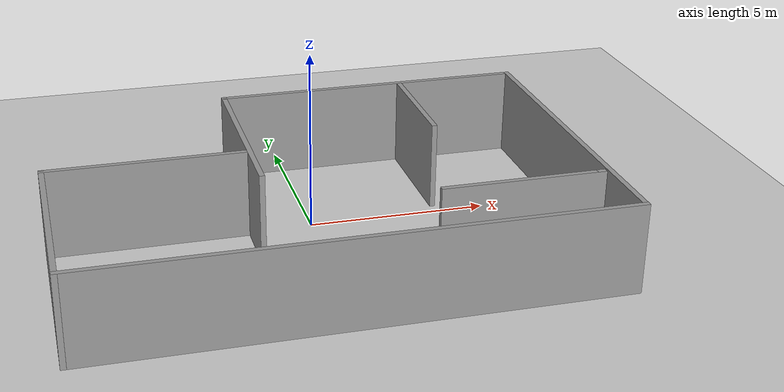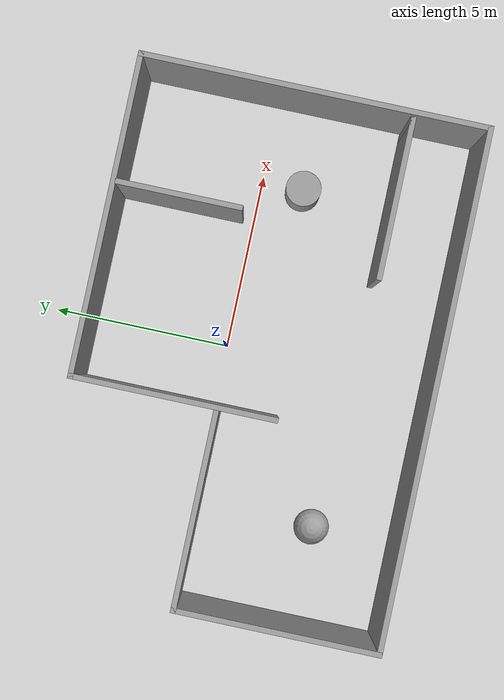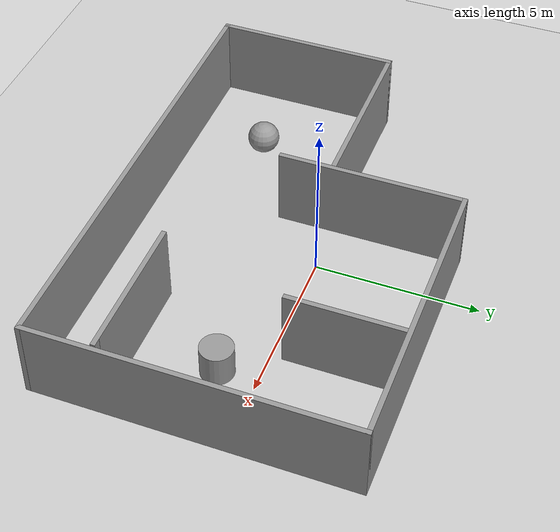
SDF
<sdf version="1.7">
 <world name="default">
  <light name="sun" type="directional">
   <pose>0 0 10 0 -0 0</pose>
   <diffuse>0.8 0.8 0.8 1</diffuse>
   <specular>0.2 0.2 0.2 1</specular>
   <attenuation>
    <range>1000</range>
    <constant>0.9</constant>
    <linear>0.01</linear>
    <quadratic>0.001</quadratic>
   </attenuation>
   <direction>-0.5 0.1 -0.9</direction>
   <spot><inner_angle>0</inner_angle><outer_angle>0</outer_angle><falloff>0</falloff></spot>
  </light>
  <model name="ground_plane">
   <static>1</static>
   <link name="link">
    <collision name="collision">
     <geometry><plane><normal>0 0 1</normal><size>100 100</size></plane></geometry>
     <surface>
      <contact><collide_bitmask>65535</collide_bitmask></contact>
      <friction><ode><mu>100</mu><mu2>50</mu2></ode></friction>
     </surface>
    </collision>
    <visual name="visual">
     <cast_shadows>0</cast_shadows>
     <geometry><plane><normal>0 0 1</normal><size>100 100</size></plane></geometry>
     <material>
      <script><uri>file://media/materials/scripts/gazebo.material</uri><name>Gazebo/Grey</name></script>
     </material>
    </visual>
   </link>
  </model>
  <gravity>0 0 -9.8</gravity>
  <magnetic_field>6e-06 2.3e-05 -4.2e-05</magnetic_field>
  <atmosphere type="adiabatic"/>
  <physics type="ode">
   <max_step_size>0.001</max_step_size>
   <real_time_factor>1</real_time_factor>
   <real_time_update_rate>1000</real_time_update_rate>
  </physics>
  <scene><ambient>0.4 0.4 0.4 1</ambient><background>0.7 0.7 0.7 1</background><shadows>1</shadows></scene>
  <spherical_coordinates>
   <surface_model>EARTH_WGS84</surface_model>
   <latitude_deg>0</latitude_deg>
   <longitude_deg>0</longitude_deg>
   <elevation>0</elevation>
   <heading_deg>0</heading_deg>
  </spherical_coordinates>
  <model name="Untitled">
   <pose>-0.035 -0.93 0 0 -0 0</pose>
   <link name="Wall_0">
    <collision name="Wall_0_Collision">
     <geometry><box><size>5.75 0.15 2.5</size></box></geometry>
     <pose>0 0 1.25 0 -0 0</pose>
    </collision>
    <visual name="Wall_0_Visual">
     <pose>0 0 1.25 0 -0 0</pose>
     <geometry><box><size>5.75 0.15 2.5</size></box></geometry>
     <material>
      <script><uri>file://media/materials/scripts/gazebo.material</uri><name>Gazebo/Grey</name></script>
      <ambient>1 1 1 1</ambient>
     </material>
     <meta><layer>0</layer></meta>
    </visual>
    <pose>-1.675 2 0 0 -0 1.5708</pose>
   </link>
   <link name="Wall_1">
    <collision name="Wall_1_Collision">
     <geometry><box><size>9 0.15 2.5</size></box></geometry>
     <pose>0 0 1.25 0 -0 0</pose>
    </collision>
    <visual name="Wall_1_Visual">
     <pose>0 0 1.25 0 -0 0</pose>
     <geometry><box><size>9 0.15 2.5</size></box></geometry>
     <material>
      <script><uri>file://media/materials/scripts/gazebo.material</uri><name>Gazebo/Grey</name></script>
      <ambient>1 1 1 1</ambient>
     </material>
     <meta><layer>0</layer></meta>
    </visual>
    <pose>2.75 4.8 0 0 -0 0</pose>
   </link>
   <link name="Wall_10">
    <collision name="Wall_10_Collision">
     <geometry><box><size>4.5 0.15 2.5</size></box></geometry>
     <pose>0 0 1.25 0 -0 0</pose>
    </collision>
    <visual name="Wall_10_Visual">
     <pose>0 0 1.25 0 -0 0</pose>
     <geometry><box><size>4.5 0.15 2.5</size></box></geometry>
     <material>
      <script><uri>file://media/materials/scripts/gazebo.material</uri><name>Gazebo/Grey</name></script>
      <ambient>1 1 1 1</ambient>
     </material>
     <meta><layer>0</layer></meta>
    </visual>
    <pose>4.80718 -2.71208 0 0 -0 3.14159</pose>
   </link>
   <link name="Wall_2">
    <collision name="Wall_2_Collision">
     <geometry><box><size>9.75 0.15 2.5</size></box></geometry>
     <pose>0 0 1.25 0 -0 0</pose>
    </collision>
    <visual name="Wall_2_Visual">
     <pose>0 0 1.25 0 -0 0</pose>
     <geometry><box><size>9.75 0.15 2.5</size></box></geometry>
     <material>
      <script><uri>file://media/materials/scripts/gazebo.material</uri><name>Gazebo/Grey</name></script>
      <ambient>1 1 1 1</ambient>
     </material>
     <meta><layer>0</layer></meta>
    </visual>
    <pose>7.175 -0 0 0 -0 -1.5708</pose>
   </link>
   <link name="Wall_3">
    <collision name="Wall_3_Collision">
     <geometry><box><size>14.5 0.15 2.5</size></box></geometry>
     <pose>0 0 1.25 0 -0 0</pose>
    </collision>
    <visual name="Wall_3_Visual">
     <pose>0 0 1.25 0 -0 0</pose>
     <geometry><box><size>14.5 0.15 2.5</size></box></geometry>
     <material>
      <script><uri>file://media/materials/scripts/gazebo.material</uri><name>Gazebo/Grey</name></script>
      <ambient>1 1 1 1</ambient>
     </material>
     <meta><layer>0</layer></meta>
    </visual>
    <pose>-0 -4.8 0 0 -0 3.14159</pose>
   </link>
   <link name="Wall_4">
    <collision name="Wall_4_Collision">
     <geometry><box><size>5.75 0.15 2.5</size></box></geometry>
     <pose>0 0 1.25 0 -0 0</pose>
    </collision>
    <visual name="Wall_4_Visual">
     <pose>0 0 1.25 0 -0 0</pose>
     <geometry><box><size>5.75 0.15 2.5</size></box></geometry>
     <material>
      <script><uri>file://media/materials/scripts/gazebo.material</uri><name>Gazebo/Grey</name></script>
      <ambient>1 1 1 1</ambient>
     </material>
     <meta><layer>0</layer></meta>
    </visual>
    <pose>-7.175 -2 0 0 -0 1.5708</pose>
   </link>
   <link name="Wall_5">
    <collision name="Wall_5_Collision">
     <geometry><box><size>5.5 0.15 2.5</size></box></geometry>
     <pose>0 0 1.25 0 -0 0</pose>
    </collision>
    <visual name="Wall_5_Visual">
     <pose>0 0 1.25 0 -0 0</pose>
     <geometry><box><size>5.5 0.15 2.5</size></box></geometry>
     <material>
      <script><uri>file://media/materials/scripts/gazebo.material</uri><name>Gazebo/Grey</name></script>
      <ambient>1 1 1 1</ambient>
     </material>
     <meta><layer>0</layer></meta>
    </visual>
    <pose>-4.5 0.8 0 0 -0 0</pose>
   </link>
   <link name="Wall_7">
    <collision name="Wall_7_Collision">
     <geometry><box><size>3.5 0.15 2.5</size></box></geometry>
     <pose>0 0 1.25 0 -0 0</pose>
    </collision>
    <visual name="Wall_7_Visual">
     <pose>0 0 1.25 0 -0 0</pose>
     <geometry><box><size>3.5 0.15 2.5</size></box></geometry>
     <material>
      <script><uri>file://media/materials/scripts/gazebo.material</uri><name>Gazebo/Grey</name></script>
      <ambient>1 1 1 1</ambient>
     </material>
     <meta><layer>0</layer></meta>
    </visual>
    <pose>3.68092 3.00046 0 0 -0 -1.5708</pose>
   </link>
   <link name="Wall_9">
    <collision name="Wall_9_Collision">
     <geometry><box><size>0.25 0.15 2.5</size></box></geometry>
     <pose>0 0 1.25 0 -0 0</pose>
    </collision>
    <visual name="Wall_9_Visual">
     <pose>0 0 1.25 0 -0 0</pose>
     <geometry><box><size>0.25 0.15 2.5</size></box></geometry>
     <material>
      <script><uri>file://media/materials/scripts/gazebo.material</uri><name>Gazebo/Grey</name></script>
      <ambient>1 1 1 1</ambient>
     </material>
     <meta><layer>0</layer></meta>
    </visual>
    <pose>6.93218 -2.71208 0 0 -0 0</pose>
   </link>
   <static>1</static>
  </model>
  <model name="unit_sphere">
   <pose>-4.50261 -3.40248 0.5 0 -0 0</pose>
   <link name="link">
    <inertial>
     <mass>1</mass>
     <inertia><ixx>0.1</ixx><ixy>0</ixy><ixz>0</ixz><iyy>0.1</iyy><iyz>0</iyz><izz>0.1</izz></inertia>
    </inertial>
    <collision name="collision"><geometry><sphere><radius>0.5</radius></sphere></geometry></collision>
    <visual name="visual">
     <geometry><sphere><radius>0.5</radius></sphere></geometry>
     <material>
      <script><name>Gazebo/Grey</name><uri>file://media/materials/scripts/gazebo.material</uri></script>
     </material>
    </visual>
   </link>
  </model>
  <model name="unit_cylinder">
   <pose>4.76044 -1.17797 0.499993 -3e-06 -4e-06 -0</pose>
   <link name="link">
    <inertial>
     <mass>1</mass>
     <inertia><ixx>0.145833</ixx><ixy>0</ixy><ixz>0</ixz><iyy>0.145833</iyy><iyz>0</iyz><izz>0.125</izz></inertia>
    </inertial>
    <collision name="collision">
     <geometry><cylinder><radius>0.5</radius><length>1</length></cylinder></geometry>
    </collision>
    <visual name="visual">
     <geometry><cylinder><radius>0.5</radius><length>1</length></cylinder></geometry>
     <material>
      <script><name>Gazebo/Grey</name><uri>file://media/materials/scripts/gazebo.material</uri></script>
     </material>
    </visual>
   </link>
  </model>
 </world>
</sdf>
